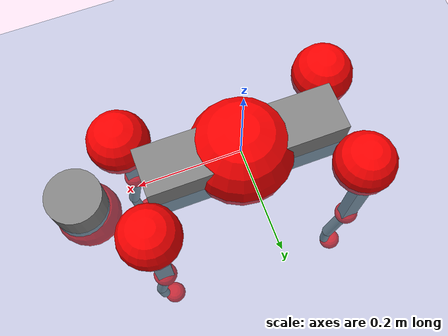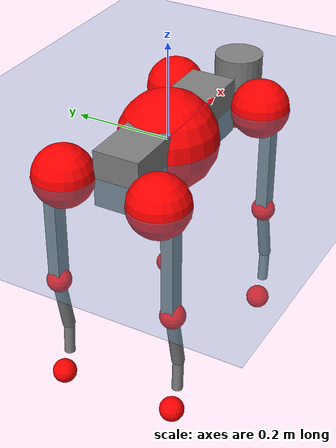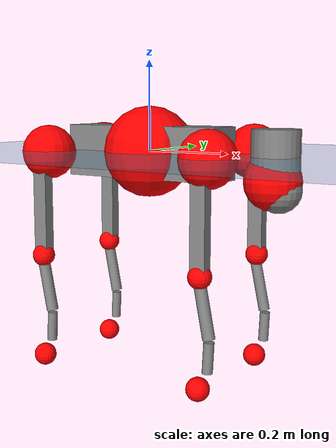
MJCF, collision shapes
<mujoco model="go2">
  <compiler angle="radian" assetdir="assets" balanceinertia="true" inertiafromgeom="false"/>

  <option timestep="0.005" density="1.2" viscosity="2e-05"/>

  <size nkey="1"/>

  <visual>
    <quality shadowsize="8192"/>
    <map shadowclip="0.5"/>
  </visual>

  <default>
    <default class="/">
      <geom contype="0" conaffinity="0" group="1" solref="-1000 -80"/>
      <site size="0.01 0.005 0.005" group="5"/>
      <general forcelimited="true" biastype="affine" gainprm="20" biasprm="0 -20 -0.5"/>
      <default class="go2">
        <joint armature="0.01" damping="0.01" frictionloss="0.2"/>
        <geom condim="1" margin="0.001"/>
        <default class="visual">
          <geom type="mesh" group="2"/>
        </default>
        <default class="collision">
          <geom group="3"/>
          <default class="foot">
            <geom size="0.022 0 0" condim="6" priority="1" friction="0.8 0.02 0.01" solimp="0.015 1 0.022"/>
          </default>
        </default>
        <default class="reward_collision_sphere">
          <geom group="5" rgba="1 0 0 1"/>
        </default>
      </default>
    </default>
  </default>

  <asset>
    <texture type="skybox" colorspace="auto" name="//unnamed_texture_0" builtin="gradient" rgb1="0.95 0.95 0.95" rgb2="0.95 0.95 0.95" width="100" height="600"/>
    <texture type="2d" colorspace="auto" name="texplane" builtin="checker" rgb1="0.345 0.575 0.748" rgb2="0.345 0.575 0.748" markrgb="1 1 1" width="512" height="512"/>
    <material name="MatPlane" class="/" texture="texplane" texuniform="true" texrepeat="2 2" specular="0.9"/>
    <material name="metal" class="/" rgba="0.9 0.95 0.95 1"/>
    <material name="black" class="/" rgba="0 0 0 1"/>
    <material name="white" class="/"/>
    <material name="gray" class="/" rgba="0.671705 0.692426 0.77427 1"/>
    <mesh name="base_0" class="/" file="base_0.obj"/>
    <mesh name="base_1" class="/" file="base_1.obj"/>
    <mesh name="base_2" class="/" file="base_2.obj"/>
    <mesh name="base_3" class="/" file="base_3.obj"/>
    <mesh name="base_4" class="/" file="base_4.obj"/>
    <mesh name="hip_0" class="/" file="hip_0.obj"/>
    <mesh name="hip_1" class="/" file="hip_1.obj"/>
    <mesh name="thigh_0" class="/" file="thigh_0.obj"/>
    <mesh name="thigh_1" class="/" file="thigh_1.obj"/>
    <mesh name="thigh_mirror_0" class="/" file="thigh_mirror_0.obj"/>
    <mesh name="thigh_mirror_1" class="/" file="thigh_mirror_1.obj"/>
    <mesh name="calf_0" class="/" file="calf_0.obj"/>
    <mesh name="calf_1" class="/" file="calf_1.obj"/>
    <mesh name="calf_mirror_0" class="/" file="calf_mirror_0.obj"/>
    <mesh name="calf_mirror_1" class="/" file="calf_mirror_1.obj"/>
    <mesh name="foot" class="/" file="foot.obj"/>
  </asset>

  <worldbody>
    <geom name="floor" class="/" size="100 100 0.125" type="plane" group="0" material="MatPlane"/>
    <light name="toplight_shadow" class="/" pos="0 0 5" dir="0.0990148 0.0990148 -0.990148" type="directional" ambient="0.04 0.04 0.04" diffuse="0.55 0.55 0.55" specular="0.12 0.12 0.12"/>
    <light name="toplight_fill" class="/" pos="0 0 5" dir="0.0990148 0.0990148 -0.990148" type="directional" castshadow="false" ambient="0.04 0.04 0.04" diffuse="0.3 0.3 0.3" specular="0.08 0.08 0.08"/>
    <body name="trunk" childclass="go2" pos="0.000159047 -0.000375128 -0.00155342" quat="1 0.000172124 -0.000180827 -0.000130806">
      <inertial pos="0.0219916 0.00013149 -0.00334144" quat="-0.0136104 0.714375 0.0012852 0.69963" mass="7.5524" diaginertia="0.16877 0.0461329 0.0422137"/>
      <joint name="//unnamed_joint_0" type="free" armature="0" damping="0" frictionloss="0"/>
      <geom name="//unnamed_geom_1" class="visual" material="black" mesh="base_0"/>
      <geom name="//unnamed_geom_2" class="visual" material="black" mesh="base_1"/>
      <geom name="//unnamed_geom_3" class="visual" material="black" mesh="base_2"/>
      <geom name="//unnamed_geom_4" class="visual" material="white" mesh="base_3"/>
      <geom name="//unnamed_geom_5" class="visual" material="gray" mesh="base_4"/>
      <geom name="trunk_1" class="collision" size="0.192132 0.047752 0.0582217" type="box"/>
      <geom name="trunk_2" class="collision" size="0.0510717 0.0459645" pos="0.310144 0 0.0111656" type="cylinder"/>
      <geom name="trunk_3" class="collision" size="0.0480074" pos="0.31885 0 -0.0669936"/>
      <geom name="//unnamed_geom_9" class="reward_collision_sphere" size="0.102143"/>
      <geom name="//unnamed_geom_10" class="reward_collision_sphere" size="0.061286" pos="0.304703 0 -0.0502452"/>
      <site name="imu" pos="-0.018371 -0.00514802 0.0463031" size="0.0102143"/>
      <camera name="track" pos="0 -1.71903 0" quat="0.707107 0.707107 0 0" mode="trackcom"/>
      <camera name="ego_camera" pos="0.339526 0 0.0502452" quat="-0.5 -0.5 0.5 0.5"/>
      <body name="FL_hip" pos="0.211163 0.0385535 0.00198744" quat="0.999999 0.000700732 -0.000617783 -0.000783931">
        <inertial pos="-0.00626452 -0.000441249 -0.000135601" quat="0.487599 0.501878 0.508394 0.501898" mass="0.734951" diaginertia="0.00137756 0.000285293 0.000868791"/>
        <joint name="FL_hip_joint" pos="0 0 0" axis="0.999997 -0.00218197 -0.0013851" range="-1.04811 1.09665" armature="0.00960233" damping="0.0226795" frictionloss="0.187967"/>
        <geom name="//unnamed_geom_11" class="visual" material="metal" mesh="hip_0"/>
        <geom name="//unnamed_geom_12" class="visual" material="gray" mesh="hip_1"/>
        <geom name="//unnamed_geom_13" class="collision" size="0.046986 0.0204287" pos="0 0.0687613 0" quat="0.707107 0.707107 0 0" type="cylinder"/>
        <geom name="//unnamed_geom_14" class="reward_collision_sphere" size="0.061286" pos="0 0.0601662 0"/>
        <body name="FL_thigh" pos="-0.00033902 0.0800617 0.00289496" quat="0.999999 1.83283e-05 -0.00100285 -0.000135737">
          <inertial pos="-0.00149084 -0.0190871 -0.03702" quat="0.823758 0.0821948 -0.025898 0.560353" mass="1.25483" diaginertia="0.00911572 0.00273544 0.00148972"/>
          <joint name="FL_thigh_joint" pos="0 0 0" axis="0.00511054 0.999908 0.0125738" stiffness="0.00999084" range="-1.61457 3.54011" armature="0.010893" damping="0" frictionloss="0.206323"/>
          <geom name="//unnamed_geom_15" class="visual" material="metal" mesh="thigh_0"/>
          <geom name="//unnamed_geom_16" class="visual" material="gray" mesh="thigh_1"/>
          <geom name="//unnamed_geom_17" class="collision" size="0.108783 0.0125126 0.0173644" pos="0 0 -0.118914" quat="0.707107 0 0.707107 0" type="box"/>
          <body name="FL_calf" pos="0.000587651 0.000141628 -0.236096" quat="1 -0.000348998 -0.000111321 0.000107518">
            <inertial pos="0.0045889 0.000139161 -0.159979" quat="0.713831 0.000406553 0.006216 0.70029" mass="0.251799" diaginertia="0.00219817 0.000687698 8.72065e-05"/>
            <joint name="FL_calf_joint" pos="0 0 0" axis="0.0189585 0.998702 0.0472645" stiffness="0.00179121" range="-2.75945 -0.782721" armature="0.0114852" damping="0.0117061" frictionloss="0.224382"/>
            <geom name="//unnamed_geom_18" class="visual" material="gray" mesh="calf_0"/>
            <geom name="//unnamed_geom_19" class="visual" material="black" mesh="calf_1"/>
            <geom name="FL_calf0" class="collision" size="0.0122572 0.061286" pos="0.0087058 0 -0.0669936" quat="0.994493 0 -0.104807 0" type="cylinder"/>
            <geom name="//unnamed_geom_21" class="collision" size="0.0112358 0.0331966" pos="0.0217645 0 -0.165251" quat="0.999688 0 0.0249974 0" type="cylinder"/>
            <geom name="//unnamed_geom_22" class="visual" pos="0 0 -0.237827" quat="1 0 0 0" material="black" mesh="foot"/>
            <geom name="FL_foot" class="foot" size="0.0153217" pos="-0.00217645 0 -0.237827"/>
            <geom name="//unnamed_geom_24" class="reward_collision_sphere" size="0.0255358"/>
            <geom name="//unnamed_geom_25" class="reward_collision_sphere" size="0.0255358" pos="-0.00217645 0 -0.237827"/>
            <site name="FL_foot" class="foot" pos="-0.00217645 0 -0.237827" size="0.0102143"/>
          </body>
        </body>
      </body>
      <body name="FR_hip" pos="0.208917 -0.0395487 -0.00241734" quat="1 -1.41237e-05 -9.75232e-05 9.27355e-05">
        <inertial pos="-0.00589966 -0.00188413 -0.000514887" quat="0.496004 0.503716 0.499794 0.500456" mass="0.719692" diaginertia="0.0013367 0.000294871 0.000858424"/>
        <joint name="FR_hip_joint" pos="0 0 0" axis="0.999913 0.0131487 -0.000908146" range="-1.03932 1.07098" armature="0.010297" damping="0" frictionloss="0.207221"/>
        <geom name="//unnamed_geom_26" class="visual" pos="0 -2.23926e-09 -9.60465e-08" quat="4.63268e-05 1 0 0" material="metal" mesh="hip_0"/>
        <geom name="//unnamed_geom_27" class="visual" pos="0 -3.63011e-09 2.3756e-07" quat="4.63268e-05 1 0 0" material="gray" mesh="hip_1"/>
        <geom name="//unnamed_geom_28" class="collision" size="0.046986 0.0204287" pos="0 -0.0687613 0" quat="0.707107 0.707107 0 0" type="cylinder"/>
        <geom name="//unnamed_geom_29" class="reward_collision_sphere" size="0.061286" pos="0 -0.0601662 0"/>
        <body name="FR_thigh" pos="-0.00260085 -0.0829149 -0.00160229" quat="1 -0.000440553 0.000600504 0.000403581">
          <inertial pos="-0.0042793 0.0203373 -0.0366454" quat="0.551612 -0.0199422 0.08455 0.829565" mass="1.22768" diaginertia="0.00899164 0.00277176 0.00155563"/>
          <joint name="FR_thigh_joint" pos="0 0 0" axis="0.00017388 -1 -0.000287297" range="-3.52586 1.60391" armature="0.0100692" damping="0.00270043" frictionloss="0.176328"/>
          <geom name="//unnamed_geom_30" class="visual" material="metal" mesh="thigh_mirror_0"/>
          <geom name="//unnamed_geom_31" class="visual" material="gray" mesh="thigh_mirror_1"/>
          <geom name="//unnamed_geom_32" class="collision" size="0.108783 0.0125126 0.0173644" pos="0 0 -0.118914" quat="0.707107 0 0.707107 0" type="box"/>
          <body name="FR_calf" pos="-0.000354008 0.0011072 -0.234862" quat="1 -7.02288e-05 9.66849e-05 -7.15586e-05">
            <inertial pos="0.0073103 0.00139383 -0.158703" quat="0.697178 -0.00603656 -0.00516238 0.716854" mass="0.251751" diaginertia="0.00230719 0.000676703 9.11125e-05"/>
            <joint name="FR_calf_joint" pos="0 0 0" axis="-0.00175416 -0.999991 0.00389909" stiffness="0.00258577" range="0.793452 2.75934" armature="0.00887652" damping="0.0150004" frictionloss="0.218522"/>
            <geom name="//unnamed_geom_33" class="visual" material="gray" mesh="calf_mirror_0"/>
            <geom name="//unnamed_geom_34" class="visual" material="black" mesh="calf_mirror_1"/>
            <geom name="FR_calf0" class="collision" size="0.0132786 0.061286" pos="0.0108822 0 -0.0669936" quat="0.995004 0 -0.0998334 0" type="cylinder"/>
            <geom name="//unnamed_geom_36" class="collision" size="0.0112358 0.0331966" pos="0.0217645 0 -0.165251" quat="0.999688 0 0.0249974 0" type="cylinder"/>
            <geom name="//unnamed_geom_37" class="visual" pos="0 0 -0.237827" quat="1 0 0 0" material="black" mesh="foot"/>
            <geom name="FR_foot" class="foot" size="0.0248667" pos="-0.00217645 0 -0.237827"/>
            <geom name="//unnamed_geom_39" class="reward_collision_sphere" size="0.0255358"/>
            <geom name="//unnamed_geom_40" class="reward_collision_sphere" size="0.0255358" pos="-0.00217645 0 -0.237827"/>
            <site name="FR_foot" class="foot" pos="-0.00217645 0 -0.237827" size="0.0102143"/>
          </body>
        </body>
      </body>
      <body name="RL_hip" pos="-0.208757 0.0424343 -0.00171419" quat="0.999999 0.000727609 0.000765119 -0.000746126">
        <inertial pos="0.00847697 0.00115051 -0.000403214" quat="0.51315 0.493764 0.498785 0.494052" mass="0.731024" diaginertia="0.00130063 0.000273692 0.000832867"/>
        <joint name="RL_hip_joint" pos="0 0 0" axis="-0.999983 0.00269007 0.00521146" range="-0.991988 1.10091" armature="0.0104324" damping="0" frictionloss="0.211689"/>
        <geom name="//unnamed_geom_41" class="visual" pos="2.46852e-10 0 4.83886e-08" quat="4.63268e-05 0 1 0" material="metal" mesh="hip_0"/>
        <geom name="//unnamed_geom_42" class="visual" pos="4.00176e-10 0 4.29138e-08" quat="4.63268e-05 0 1 0" material="gray" mesh="hip_1"/>
        <geom name="//unnamed_geom_43" class="collision" size="0.046986 0.0204287" pos="0 0.0687613 0" quat="0.707107 0.707107 0 0" type="cylinder"/>
        <geom name="//unnamed_geom_44" class="reward_collision_sphere" size="0.061286" pos="0 0.0601662 0"/>
        <body name="RL_thigh" pos="-0.00195011 0.084215 -0.00269409" quat="1 7.72084e-06 9.05366e-06 1.08733e-05">
          <inertial pos="-0.00350178 -0.0184417 -0.0376521" quat="0.8296 0.084801 -0.0200114 0.551519" mass="1.22617" diaginertia="0.00901365 0.00265871 0.00156863"/>
          <joint name="RL_thigh_joint" pos="0 0 0" axis="0.00451368 0.99999 -0.000160881" stiffness="0.0062173" range="-0.53851 4.52484" armature="0.00893325" damping="0" frictionloss="0.232091"/>
          <geom name="//unnamed_geom_45" class="visual" material="metal" mesh="thigh_0"/>
          <geom name="//unnamed_geom_46" class="visual" material="gray" mesh="thigh_1"/>
          <geom name="//unnamed_geom_47" class="collision" size="0.108783 0.0125126 0.0173644" pos="0 0 -0.118914" quat="0.707107 0 0.707107 0" type="box"/>
          <body name="RL_calf" pos="-0.00193044 -0.00127333 -0.240795" quat="0.999999 0.000218934 0.000928048 -0.000759923">
            <inertial pos="0.00705248 -7.94679e-05 -0.157172" quat="0.712417 0.00099215 -0.0172698 0.701543" mass="0.256468" diaginertia="0.00225304 0.000689094 9.39575e-05"/>
            <joint name="RL_calf_joint" pos="0 0 0" axis="-0.00258947 0.999992 0.0030054" stiffness="0.00114318" range="-2.72329 -0.831647" armature="0.00976146" damping="0" frictionloss="0.223023"/>
            <geom name="//unnamed_geom_48" class="visual" material="gray" mesh="calf_0"/>
            <geom name="//unnamed_geom_49" class="visual" material="black" mesh="calf_1"/>
            <geom name="RL_calf0" class="collision" size="0.0132786 0.061286" pos="0.0108822 0 -0.0669936" quat="0.995004 0 -0.0998334 0" type="cylinder"/>
            <geom name="//unnamed_geom_51" class="collision" size="0.0112358 0.0331966" pos="0.0217645 0 -0.165251" quat="0.999688 0 0.0249974 0" type="cylinder"/>
            <geom name="//unnamed_geom_52" class="visual" pos="0 0 -0.237827" quat="1 0 0 0" material="black" mesh="foot"/>
            <geom name="RL_foot" class="foot" size="0.0173481" pos="-0.00217645 0 -0.237827"/>
            <geom name="//unnamed_geom_54" class="reward_collision_sphere" size="0.0255358"/>
            <geom name="//unnamed_geom_55" class="reward_collision_sphere" size="0.0255358" pos="-0.00217645 0 -0.237827"/>
            <site name="RL_foot" class="foot" pos="-0.00217645 0 -0.237827" size="0.0102143"/>
          </body>
        </body>
      </body>
      <body name="RR_hip" pos="-0.210536 -0.0396588 -0.00312991" quat="1 -0.0001597 0.000154292 -0.000422834">
        <inertial pos="0.00665007 -0.000834754 -2.73475e-05" quat="0.498691 0.50199 0.488433 0.510633" mass="0.698638" diaginertia="0.00129788 0.000271021 0.000820868"/>
        <joint name="RR_hip_joint" pos="0 0 0" axis="-0.999999 -0.000778044 0.00100614" range="-1.05231 1.01156" armature="0.0103514" damping="0.00875118" frictionloss="0.20319"/>
        <geom name="//unnamed_geom_56" class="visual" pos="-2.5477e-10 -2.23926e-09 1.44435e-07" quat="2.14617e-09 4.63268e-05 4.63268e-05 -1" material="metal" mesh="hip_0"/>
        <geom name="//unnamed_geom_57" class="visual" pos="-3.80592e-10 -3.63011e-09 -1.94646e-07" quat="2.14617e-09 4.63268e-05 4.63268e-05 -1" material="gray" mesh="hip_1"/>
        <geom name="//unnamed_geom_58" class="collision" size="0.046986 0.0204287" pos="0 -0.0687613 0" quat="0.707107 0.707107 0 0" type="cylinder"/>
        <geom name="//unnamed_geom_59" class="reward_collision_sphere" size="0.061286" pos="0 -0.0601662 0"/>
        <body name="RR_thigh" pos="0.000473357 -0.0847935 -0.00128977" quat="1 0.000177285 -0.000157102 0.000233363">
          <inertial pos="-0.00257201 0.0173801 -0.0348958" quat="0.551054 -0.0198853 0.0842202 0.829971" mass="1.28778" diaginertia="0.00932846 0.00279196 0.00160953"/>
          <joint name="RR_thigh_joint" pos="0 0 0" axis="-0.00466734 -0.999989 0.000451574" stiffness="0.00281255" range="-4.54914 0.526821" armature="0.00881089" damping="0" frictionloss="0.200097"/>
          <geom name="//unnamed_geom_60" class="visual" material="metal" mesh="thigh_mirror_0"/>
          <geom name="//unnamed_geom_61" class="visual" material="gray" mesh="thigh_mirror_1"/>
          <geom name="//unnamed_geom_62" class="collision" size="0.108783 0.0125126 0.0173644" pos="0 0 -0.118914" quat="0.707107 0 0.707107 0" type="box"/>
          <body name="RR_calf" pos="0.000810271 -0.00303907 -0.235196" quat="0.999999 0.000651185 -0.000696597 0.000767678">
            <inertial pos="0.00394539 0.000638856 -0.158582" quat="0.703805 -0.00374791 0.00273288 0.710378" mass="0.259192" diaginertia="0.0022063 0.00068996 9.12723e-05"/>
            <joint name="RR_calf_joint" pos="0 0 0" axis="0.000423595 -1 0.000759471" stiffness="0.000403034" range="0.806411 2.67533" armature="0.0109407" damping="0.026931" frictionloss="0.202759"/>
            <geom name="//unnamed_geom_63" class="visual" material="gray" mesh="calf_mirror_0"/>
            <geom name="//unnamed_geom_64" class="visual" material="black" mesh="calf_mirror_1"/>
            <geom name="RR_calf0" class="collision" size="0.0132786 0.061286" pos="0.0108822 0 -0.0669936" quat="0.995004 0 -0.0998334 0" type="cylinder"/>
            <geom name="//unnamed_geom_66" class="collision" size="0.0112358 0.0331966" pos="0.0217645 0 -0.165251" quat="0.999688 0 0.0249974 0" type="cylinder"/>
            <geom name="//unnamed_geom_67" class="visual" pos="0 0 -0.237827" quat="1 0 0 0" material="black" mesh="foot"/>
            <geom name="RR_foot" class="foot" size="0.0209776" pos="-0.00217645 0 -0.237827"/>
            <geom name="//unnamed_geom_69" class="reward_collision_sphere" size="0.0255358"/>
            <geom name="//unnamed_geom_70" class="reward_collision_sphere" size="0.0255358" pos="-0.00217645 0 -0.237827"/>
            <site name="RR_foot" class="foot" pos="-0.00217645 0 -0.237827" size="0.0102143"/>
          </body>
        </body>
      </body>
    </body>
  </worldbody>

  <contact>
    <pair class="/" geom1="floor" geom2="FL_foot" name="//unnamed_contact_0"/>
    <pair class="/" geom1="floor" geom2="FR_foot" name="//unnamed_contact_1"/>
    <pair class="/" geom1="floor" geom2="RL_foot" name="//unnamed_contact_2"/>
    <pair class="/" geom1="floor" geom2="RR_foot" name="//unnamed_contact_3"/>
  </contact>

  <actuator>
    <general name="FL_hip" class="/" joint="FL_hip_joint" forcerange="-22.8913 22.8913" gainprm="21.6169" biasprm="0 -21.6169 -0.479021"/>
    <general name="FL_thigh" class="/" joint="FL_thigh_joint" forcerange="-22.133 22.133" gainprm="21.6169" biasprm="0 -21.6169 -0.479021"/>
    <general name="FL_calf" class="/" joint="FL_calf_joint" forcerange="-42.215 42.215" gainprm="21.6169" biasprm="0 -21.6169 -0.479021"/>
    <general name="FR_hip" class="/" joint="FR_hip_joint" forcerange="-22.317 22.317" gainprm="21.6169" biasprm="0 -21.6169 -0.479021"/>
    <general name="FR_thigh" class="/" joint="FR_thigh_joint" forcerange="-26.5486 26.5486" gainprm="21.6169" biasprm="0 -21.6169 -0.479021"/>
    <general name="FR_calf" class="/" joint="FR_calf_joint" forcerange="-46.2823 46.2823" gainprm="21.6169" biasprm="0 -21.6169 -0.479021"/>
    <general name="RL_hip" class="/" joint="RL_hip_joint" forcerange="-24.1312 24.1312" gainprm="21.6169" biasprm="0 -21.6169 -0.479021"/>
    <general name="RL_thigh" class="/" joint="RL_thigh_joint" forcerange="-24.4644 24.4644" gainprm="21.6169" biasprm="0 -21.6169 -0.479021"/>
    <general name="RL_calf" class="/" joint="RL_calf_joint" forcerange="-42.5765 42.5765" gainprm="21.6169" biasprm="0 -21.6169 -0.479021"/>
    <general name="RR_hip" class="/" joint="RR_hip_joint" forcerange="-21.7688 21.7688" gainprm="21.6169" biasprm="0 -21.6169 -0.479021"/>
    <general name="RR_thigh" class="/" joint="RR_thigh_joint" forcerange="-25.3774 25.3774" gainprm="21.6169" biasprm="0 -21.6169 -0.479021"/>
    <general name="RR_calf" class="/" joint="RR_calf_joint" forcerange="-46.8403 46.8403" gainprm="21.6169" biasprm="0 -21.6169 -0.479021"/>
  </actuator>

  <sensor>
    <gyro site="imu" name="imu_angular_velocity"/>
    <velocimeter site="imu" name="imu_linear_velocity"/>
    <framelinvel objtype="site" objname="FL_foot" name="FL_foot_global_linear_velocity"/>
    <framelinvel objtype="site" objname="FR_foot" name="FR_foot_global_linear_velocity"/>
    <framelinvel objtype="site" objname="RL_foot" name="RL_foot_global_linear_velocity"/>
    <framelinvel objtype="site" objname="RR_foot" name="RR_foot_global_linear_velocity"/>
  </sensor>

  <keyframe>
    <key name="home" qpos="0 0 0.325 1 0 0 0 0.1 0.8 -1.5 -0.1 -0.8 1.5 -0.1 0.8 -1.5 0.1 -0.8 1.5"/>
  </keyframe>
</mujoco>
